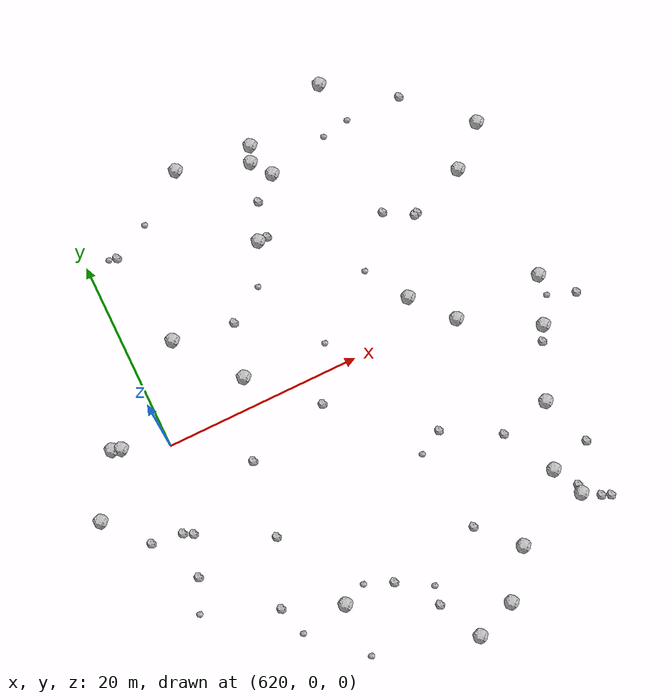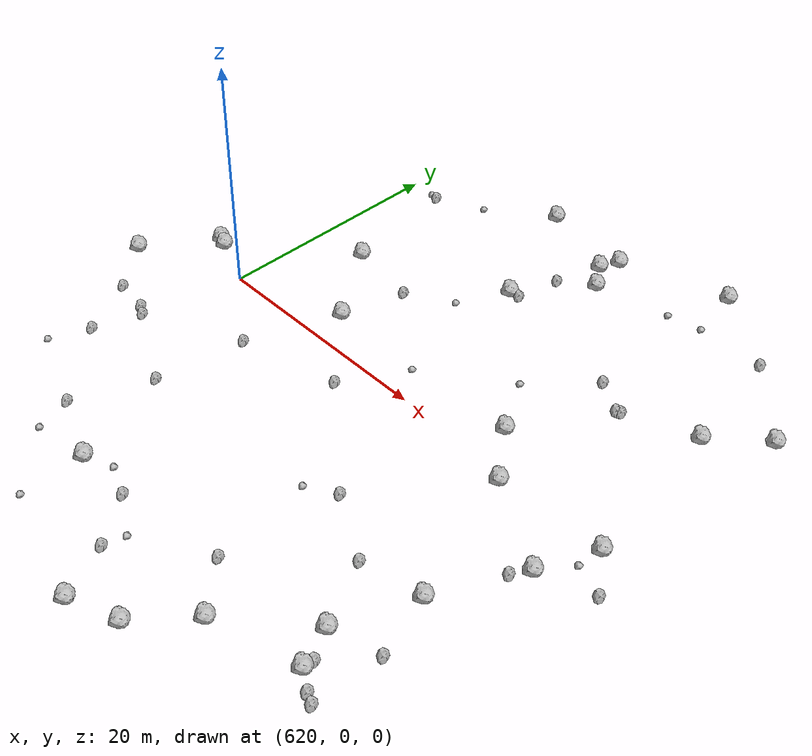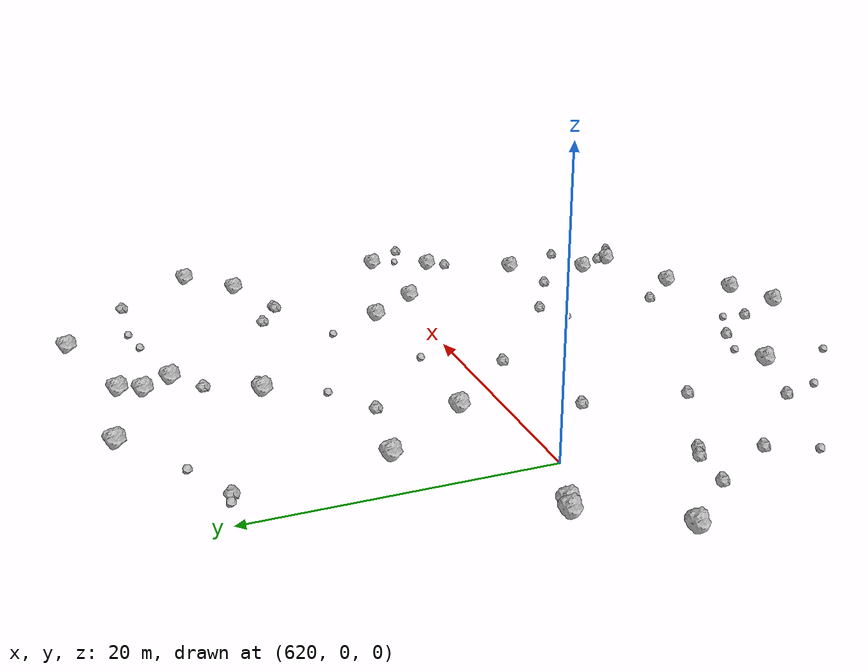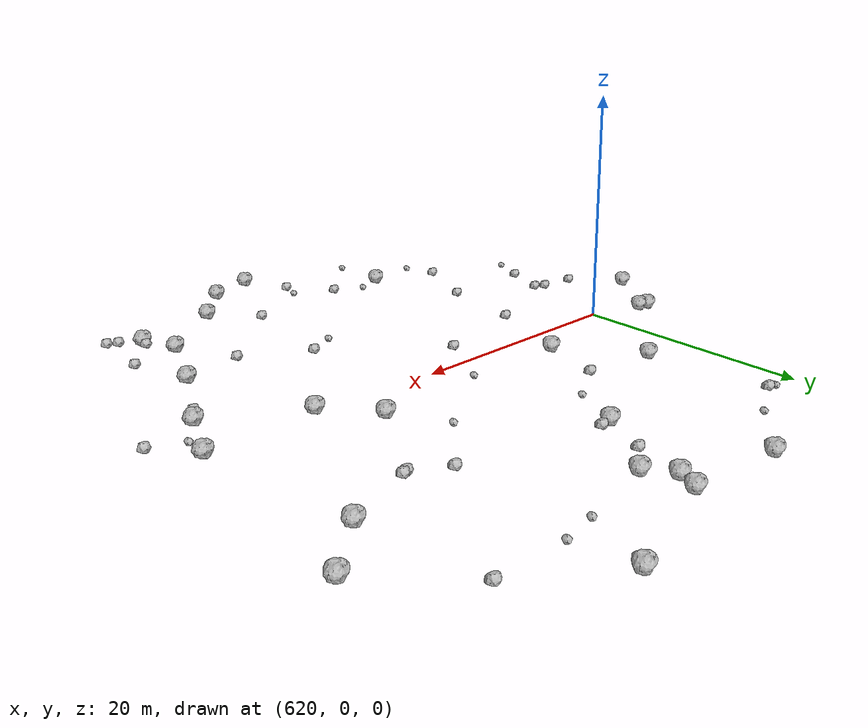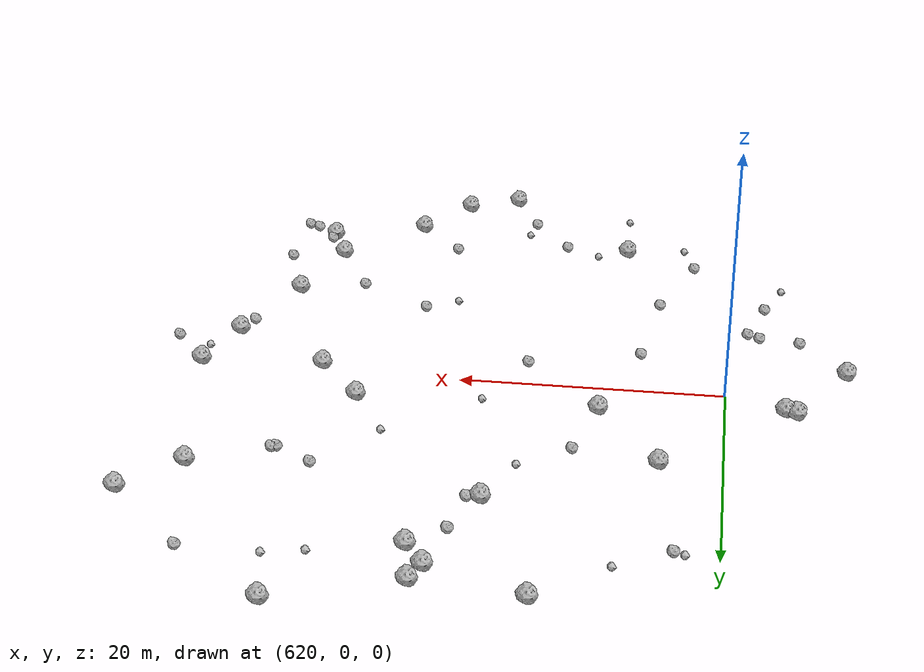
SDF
<sdf version="1.6">
 <world name="default">
  <include><uri>model://sun</uri></include>
  <model name="rock1_16_3">
   <include><uri>model://rock1</uri><pose>647.4263929839734 3.181942029071344 0.5 0 0 0</pose></include>
  </model>
  <model name="rock1_16_4">
   <include><uri>model://rock1</uri><pose>638.7200294081009 -29.45576529621897 0.5 0 0 0</pose></include>
  </model>
  <model name="rock1_16_5">
   <include><uri>model://rock1</uri><pose>639.430046716547 22.763258528627297 0.5 0 0 0</pose></include>
  </model>
  <model name="rock1_16_6">
   <include><uri>model://rock1</uri><pose>660.0987780541816 -0.43328625170991586 0.5 0 0 0</pose></include>
  </model>
  <model name="rock1_16_7">
   <include><uri>model://rock1</uri><pose>610.9580040546597 -3.818621587650423 0.5 0 0 0</pose></include>
  </model>
  <model name="rock1_16_8">
   <include><uri>model://rock1</uri><pose>657.9355372035191 12.946083732892902 0.5 0 0 0</pose></include>
  </model>
  <model name="rock1_16_9">
   <include><uri>model://rock1</uri><pose>646.3025153110498 -23.678335727889554 0.5 0 0 0</pose></include>
  </model>
  <model name="rock1_16_10">
   <include><uri>model://rock1</uri><pose>658.1513172303527 -5.182901891345001 0.5 0 0 0</pose></include>
  </model>
  <model name="rock1_16_11">
   <include><uri>model://rock1</uri><pose>640.1646990405446 24.420013872331317 0.5 0 0 0</pose></include>
  </model>
  <model name="rock1_16_12">
   <include><uri>model://rock1</uri><pose>615.626261645948 1.7443250537968353 0.5 0 0 0</pose></include>
  </model>
  <model name="rock1_16_13">
   <include><uri>model://rock1</uri><pose>640.8860735442425 20.715159362170183 0.5 0 0 0</pose></include>
  </model>
  <model name="rock1_16_14">
   <include><uri>model://rock1</uri><pose>632.2680320414743 25.292453600195607 0.5 0 0 0</pose></include>
  </model>
  <model name="rock1_16_15">
   <include><uri>model://rock1</uri><pose>636.5816565259021 14.939038467944954 0.5 0 0 0</pose></include>
  </model>
  <model name="rock1_16_16">
   <include><uri>model://rock1</uri><pose>661.9350282118797 16.617982534064232 0.5 0 0 0</pose></include>
  </model>
  <model name="rock1_16_17">
   <include><uri>model://rock1</uri><pose>614.7627725741432 2.0462972944842903 0.5 0 0 0</pose></include>
  </model>
  <model name="rock1_16_18">
   <include><uri>model://rock1</uri><pose>649.3429270190073 27.329828057210477 0.5 0 0 0</pose></include>
  </model>
  <model name="rock1_16_19">
   <include><uri>model://rock1</uri><pose>652.3455100150035 -18.42152455108615 0.5 0 0 0</pose></include>
  </model>
  <model name="rock1_16_20">
   <include><uri>model://rock1</uri><pose>629.3340544979375 2.979592269482808 0.5 0 0 0</pose></include>
  </model>
  <model name="rock1_16_21">
   <include><uri>model://rock1</uri><pose>653.6932978577306 -21.602692085931402 0.5 0 0 0</pose></include>
  </model>
  <model name="rock1_16_22">
   <include><uri>model://rock1</uri><pose>642.8064650889211 -27.940113556827615 0.5 0 0 0</pose></include>
  </model>
  <model name="rock1_16_23">
   <include><uri>model://rock1</uri><pose>654.7895146537593 -12.11180484463599 0.5 0 0 0</pose></include>
  </model>
  <model name="rock1_16_24">
   <include><uri>model://rock1</uri><pose>650.7413883274082 -0.8703021288359132 0.5 0 0 0</pose></include>
  </model>
  <model name="rock1_16_25">
   <include><uri>model://rock1</uri><pose>624.6031505937208 9.421117522921193 0.5 0 0 0</pose></include>
  </model>
  <model name="rock1_16_26">
   <include><uri>model://rock1</uri><pose>628.5733905558072 -21.21285286713273 0.5 0 0 0</pose></include>
  </model>
  <model name="rock2_16_0">
   <include><uri>model://rock2</uri><pose>655.3243537346348 -22.606317094457427 0.3 0 0 0</pose></include>
  </model>
  <model name="rock2_16_1">
   <include><uri>model://rock2</uri><pose>636.604739987537 -25.153527850164153 0.3 0 0 0</pose></include>
  </model>
  <model name="rock2_16_2">
   <include><uri>model://rock2</uri><pose>630.7920012708655 8.424448475649065 0.3 0 0 0</pose></include>
  </model>
  <model name="rock2_16_3">
   <include><uri>model://rock2</uri><pose>617.108946026569 -12.74434765239494 0.3 0 0 0</pose></include>
  </model>
  <model name="rock2_16_4">
   <include><uri>model://rock2</uri><pose>656.1897106344862 -23.00229470755044 0.3 0 0 0</pose></include>
  </model>
  <model name="rock2_16_5">
   <include><uri>model://rock2</uri><pose>614.4008142928866 -7.850047881511742 0.3 0 0 0</pose></include>
  </model>
  <model name="rock2_16_6">
   <include><uri>model://rock2</uri><pose>638.3197258398893 18.74435066514055 0.3 0 0 0</pose></include>
  </model>
  <model name="rock2_16_7">
   <include><uri>model://rock2</uri><pose>651.8079200540462 10.606319381872908 0.3 0 0 0</pose></include>
  </model>
  <model name="rock2_16_8">
   <include><uri>model://rock2</uri><pose>652.1665165559648 10.71577957756972 0.3 0 0 0</pose></include>
  </model>
  <model name="rock2_16_9">
   <include><uri>model://rock2</uri><pose>617.5065885925235 -8.278480548527085 0.3 0 0 0</pose></include>
  </model>
  <model name="rock2_16_10">
   <include><uri>model://rock2</uri><pose>642.8374478363406 -19.942838718787215 0.3 0 0 0</pose></include>
  </model>
  <model name="rock2_16_11">
   <include><uri>model://rock2</uri><pose>633.6434828789536 -21.34548412002747 0.3 0 0 0</pose></include>
  </model>
  <model name="rock2_16_12">
   <include><uri>model://rock2</uri><pose>649.6051181391616 -13.183788876203263 0.3 0 0 0</pose></include>
  </model>
  <model name="rock2_16_13">
   <include><uri>model://rock2</uri><pose>657.29489248394 -6.607972997041635 0.3 0 0 0</pose></include>
  </model>
  <model name="rock2_16_14">
   <include><uri>model://rock2</uri><pose>644.0958360341474 -10.106052474487083 0.3 0 0 0</pose></include>
  </model>
  <model name="rock2_16_15">
   <include><uri>model://rock2</uri><pose>656.0615658545161 22.61615964583848 0.3 0 0 0</pose></include>
  </model>
  <model name="rock2_16_16">
   <include><uri>model://rock2</uri><pose>623.1338401684505 19.561466791075446 0.3 0 0 0</pose></include>
  </model>
  <model name="rock2_16_17">
   <include><uri>model://rock2</uri><pose>635.0731813780465 -2.7647393522755586 0.3 0 0 0</pose></include>
  </model>
  <model name="rock2_16_18">
   <include><uri>model://rock2</uri><pose>626.5710954282009 -4.9025354310878875 0.3 0 0 0</pose></include>
  </model>
  <model name="rock2_16_19">
   <include><uri>model://rock2</uri><pose>622.8945648169225 -18.893714112954648 0.3 0 0 0</pose></include>
  </model>
  <model name="rock2_16_20">
   <include><uri>model://rock2</uri><pose>637.5413477101442 15.019250529342905 0.3 0 0 0</pose></include>
  </model>
  <model name="rock2_16_21">
   <include><uri>model://rock2</uri><pose>656.5063254047374 -17.290099171089356 0.3 0 0 0</pose></include>
  </model>
  <model name="rock2_16_22">
   <include><uri>model://rock2</uri><pose>625.446001387345 -12.531205569713805 0.3 0 0 0</pose></include>
  </model>
  <model name="rock2_16_23">
   <include><uri>model://rock2</uri><pose>662.659631922242 -3.6083652485530457 0.3 0 0 0</pose></include>
  </model>
  <model name="rock2_16_24">
   <include><uri>model://rock2</uri><pose>649.0622951249536 12.251151978979593 0.3 0 0 0</pose></include>
  </model>
  <model name="rock2_16_25">
   <include><uri>model://rock2</uri><pose>618.4173439267217 -8.785319615372874 0.3 0 0 0</pose></include>
  </model>
  <model name="rock2_16_26">
   <include><uri>model://rock2</uri><pose>653.7653020110689 -20.742906056765626 0.3 0 0 0</pose></include>
  </model>
  <model name="rock3_16_0">
   <include><uri>model://rock3</uri><pose>641.5946386810559 -11.490353797105453 0.2 0 0 0</pose></include>
  </model>
  <model name="rock3_16_1">
   <include><uri>model://rock3</uri><pose>650.1856994315714 22.662051190492633 0.2 0 0 0</pose></include>
  </model>
  <model name="rock3_16_2">
   <include><uri>model://rock3</uri><pose>615.7099015753406 -15.994585445545905 0.2 0 0 0</pose></include>
  </model>
  <model name="rock3_16_3">
   <include><uri>model://rock3</uri><pose>644.7528210196571 7.526110655332083 0.2 0 0 0</pose></include>
  </model>
  <model name="rock3_16_4">
   <include><uri>model://rock3</uri><pose>628.6251253999984 -26.622729033883672 0.2 0 0 0</pose></include>
  </model>
  <model name="rock3_16_5">
   <include><uri>model://rock3</uri><pose>637.943297317885 2.6238463595540793 0.2 0 0 0</pose></include>
  </model>
  <model name="rock3_16_6">
   <include><uri>model://rock3</uri><pose>627.0457142685165 21.495846182072796 0.2 0 0 0</pose></include>
  </model>
  <model name="rock3_16_7">
   <include><uri>model://rock3</uri><pose>636.9695772585193 -23.34799307079654 0.2 0 0 0</pose></include>
  </model>
  <model name="rock3_16_8">
   <include><uri>model://rock3</uri><pose>623.7668154987709 -21.91985590482075 0.2 0 0 0</pose></include>
  </model>
  <model name="rock3_16_9">
   <include><uri>model://rock3</uri><pose>630.910810797344 -20.240014607902708 0.2 0 0 0</pose></include>
  </model>
  <model name="rock3_16_10">
   <include><uri>model://rock3</uri><pose>622.3262383063735 19.722653540120056 0.2 0 0 0</pose></include>
  </model>
  <model name="rock3_16_11">
   <include><uri>model://rock3</uri><pose>647.2726645274084 22.089242001021667 0.2 0 0 0</pose></include>
  </model>
  <model name="rock3_16_12">
   <include><uri>model://rock3</uri><pose>634.5071438522918 10.716652847211535 0.2 0 0 0</pose></include>
  </model>
  <model name="rock3_16_13">
   <include><uri>model://rock3</uri><pose>659.8906021927627 -2.591432232755988 0.2 0 0 0</pose></include>
  </model>
 </world>
</sdf>
